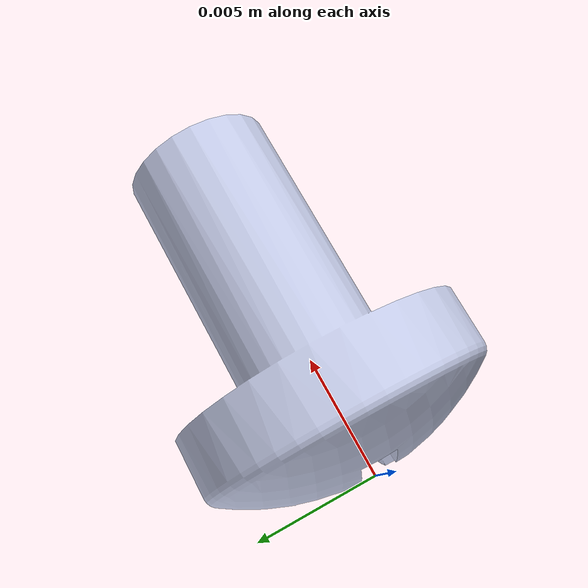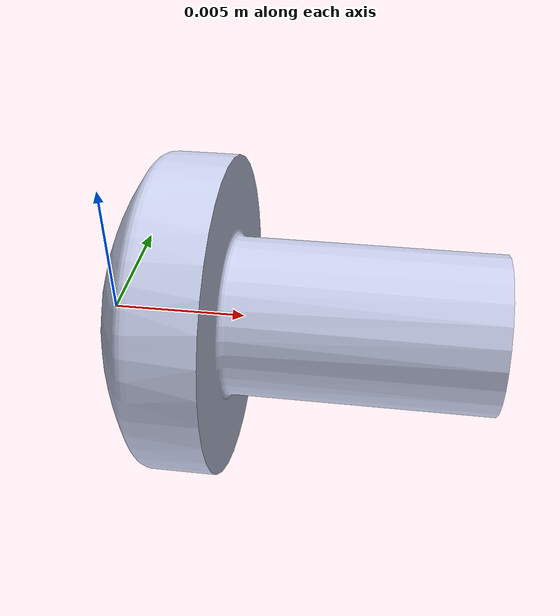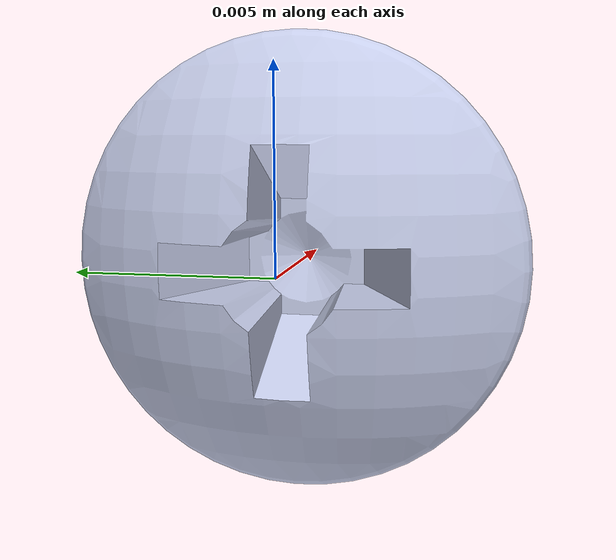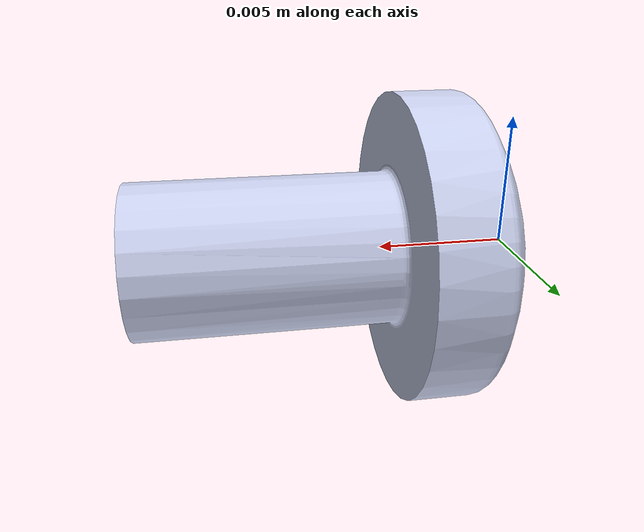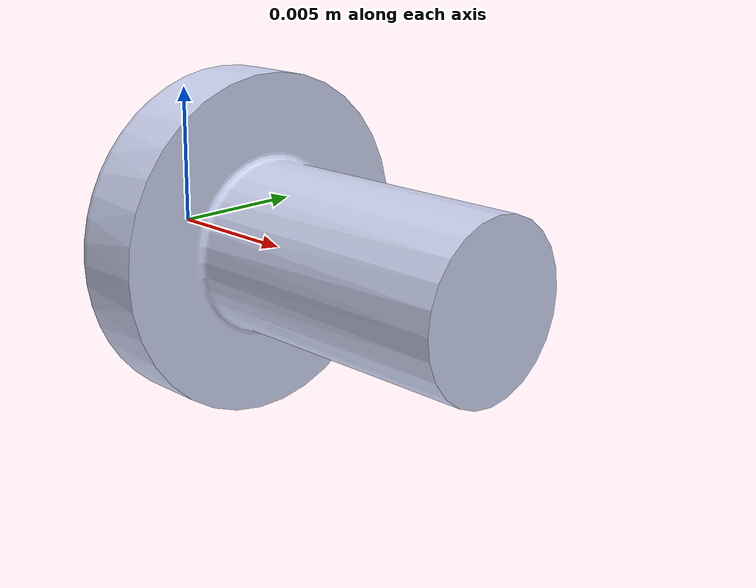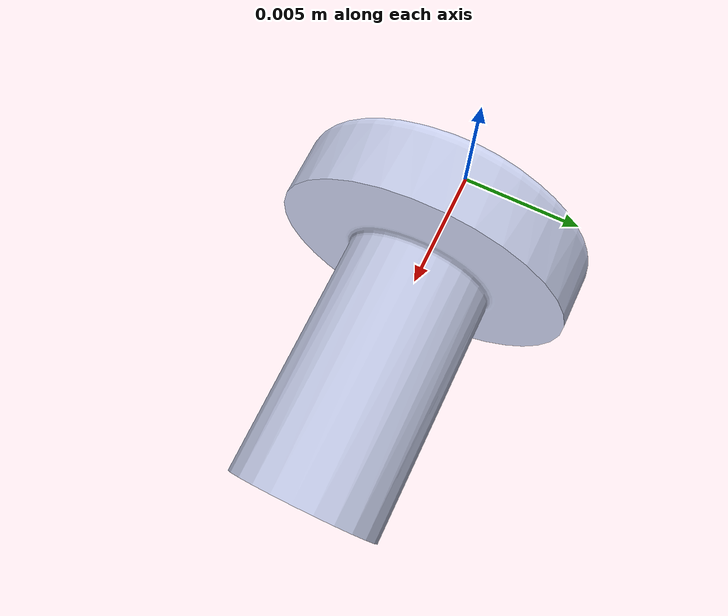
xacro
<?xml version="1.0" encoding="utf-8"?>
<robot name="screw1(4ea)" xmlns:xacro="http://www.ros.org/wiki/xacro">
  <link name="screw1(4ea)">
    <inertial>
      <origin
        xyz="0.0057802 -5.5705E-08 1.1804E-08"
        rpy="0 0 0" />
      <mass
        value="0.00065263" />
      <inertia
        ixx="7.8853E-09"
        ixy="-1.2582E-13"
        ixz="2.9197E-14"
        iyy="1.4006E-08"
        iyz="-9.55529999999999E-14"
        izz="1.4007E-08" />
    </inertial>
    <visual>
      <origin
        xyz="0 0 0"
        rpy="1.5707963267949 0 0" />
      <geometry>
        <mesh
          filename="package://cai_env/meshes/screw1(4ea).STL" />
      </geometry>
      <material
        name="">
        <color
          rgba="0.79216 0.81961 0.93333 1" />
        <texture
          filename="package://cai_env/textures/" />
      </material>
    </visual>
    <collision>
      <origin
        xyz="0 0 0"
        rpy="1.5707963267949 0 0" />
      <geometry>
        <mesh
          filename="package://cai_env/meshes/screw1(4ea).STL" />
      </geometry>
    </collision>
  </link>
  <gazebo reference="screw1(4ea)">
    <material>Gazebo/GreyTransparent</material>
  </gazebo>
</robot>
